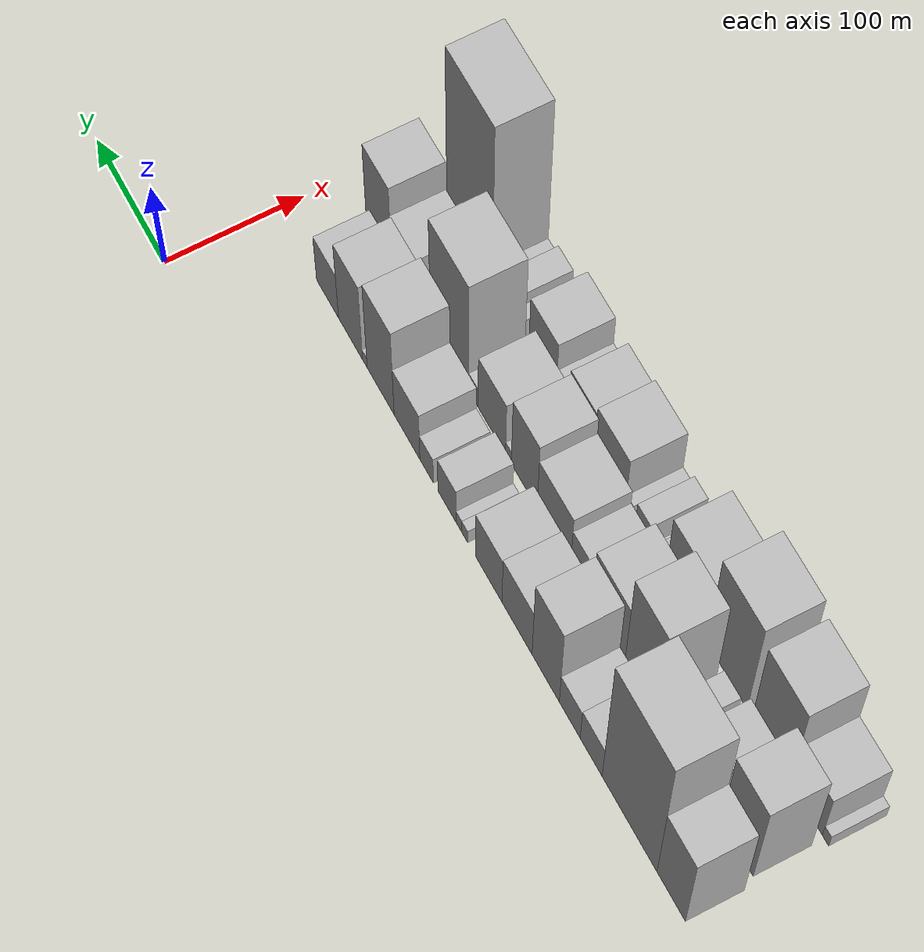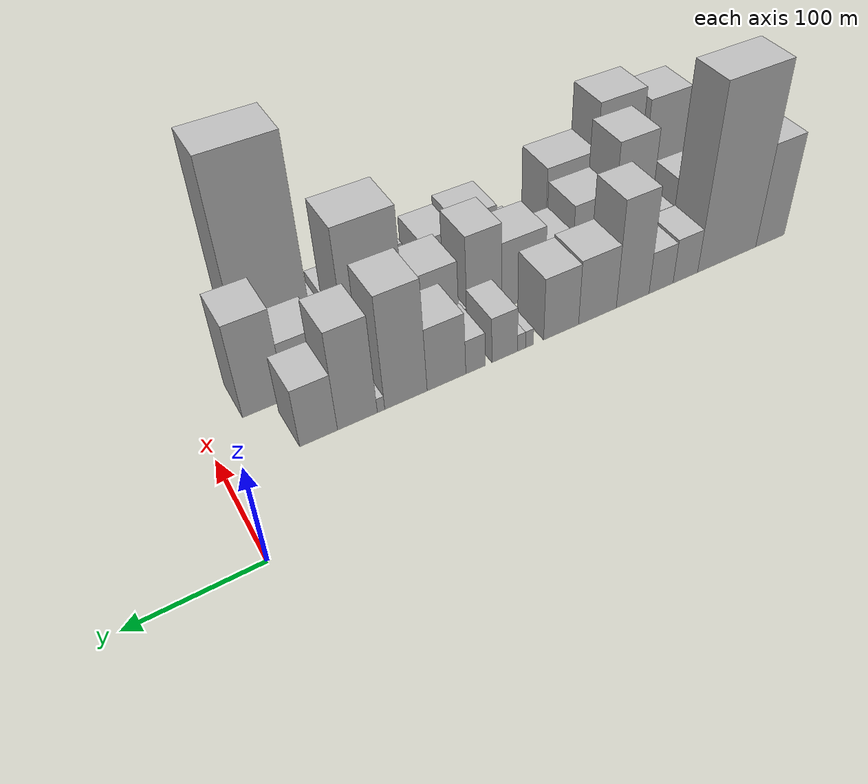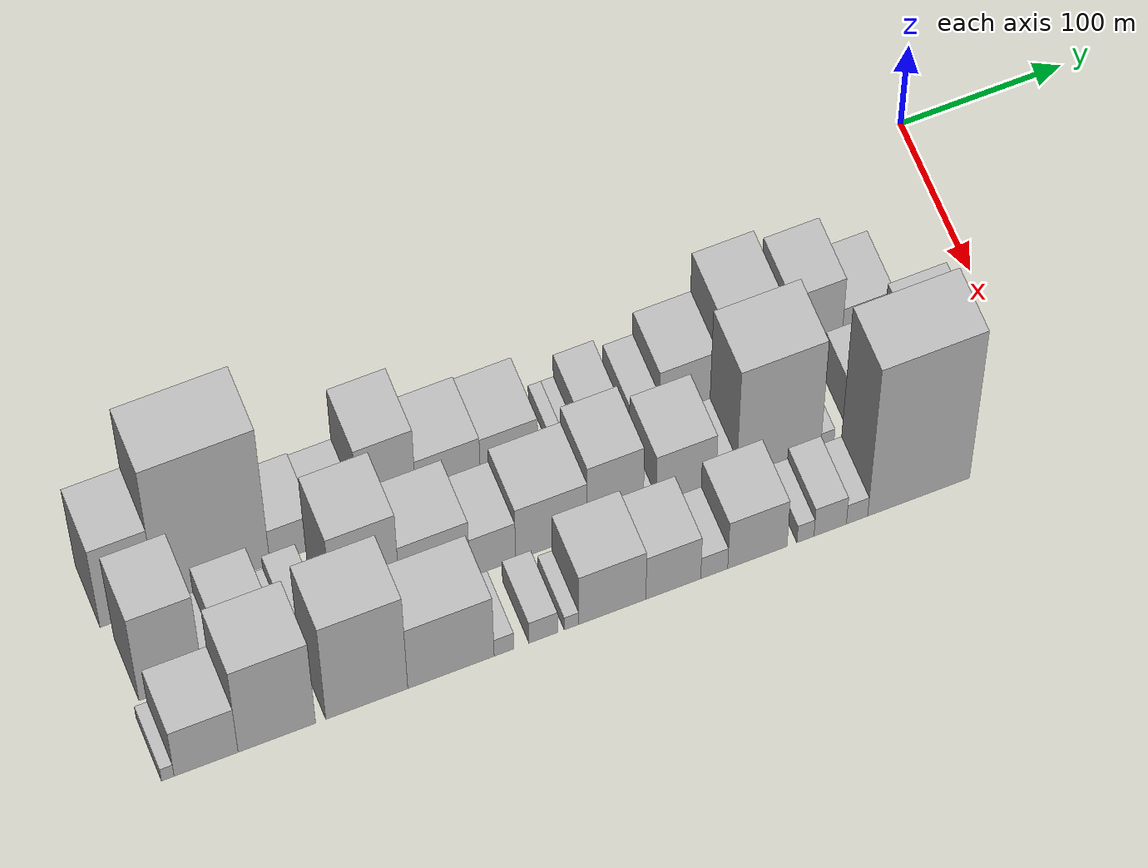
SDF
<sdf version="1.6">
 <world name="default">
  <model name="building_1">
   <static>1</static>
   <pose>100.0000 -518.8748 0 0.000000 0.000000 0.000000</pose>
   <link name="link">
    <pose>0 0 55.50 0 0 0</pose>
    <collision name="collision"><geometry><box><size>40.0000 34.2505 111.0000</size></box></geometry></collision>
    <visual name="visual">
     <cast_shadows>0</cast_shadows>
     <geometry><box><size>40.0000 34.2505 111.0000</size></box></geometry>
     <material>
      <script>
       <uri>model://HANNAS_wall/materials/scripts</uri>
       <uri>model://HANNAS_wall/materials/textures</uri>
       <name>vrc/HANNAS_wall</name>
      </script>
     </material>
    </visual>
   </link>
  </model>
  <model name="building_2">
   <static>1</static>
   <pose>100.0000 -468.1727 0 0.000000 0.000000 0.000000</pose>
   <link name="link">
    <pose>0 0 96.00 0 0 0</pose>
    <collision name="collision"><geometry><box><size>40.0000 67.1537 192.0000</size></box></geometry></collision>
    <visual name="visual">
     <cast_shadows>0</cast_shadows>
     <geometry><box><size>40.0000 67.1537 192.0000</size></box></geometry>
     <material>
      <script>
       <uri>model://HANNAS_wall/materials/scripts</uri>
       <uri>model://HANNAS_wall/materials/textures</uri>
       <name>vrc/HANNAS_wall</name>
      </script>
     </material>
    </visual>
   </link>
  </model>
  <model name="building_3">
   <static>1</static>
   <pose>100.0000 -420.9306 0 0.000000 0.000000 0.000000</pose>
   <link name="link">
    <pose>0 0 24.00 0 0 0</pose>
    <collision name="collision"><geometry><box><size>40.0000 27.3303 48.0000</size></box></geometry></collision>
    <visual name="visual">
     <cast_shadows>0</cast_shadows>
     <geometry><box><size>40.0000 27.3303 48.0000</size></box></geometry>
     <material>
      <script>
       <uri>model://HANNAS_wall/materials/scripts</uri>
       <uri>model://HANNAS_wall/materials/textures</uri>
       <name>vrc/HANNAS_wall</name>
      </script>
     </material>
    </visual>
   </link>
  </model>
  <model name="building_4">
   <static>1</static>
   <pose>100.0000 -394.1880 0 0.000000 0.000000 0.000000</pose>
   <link name="link">
    <pose>0 0 22.50 0 0 0</pose>
    <collision name="collision"><geometry><box><size>40.0000 26.1550 45.0000</size></box></geometry></collision>
    <visual name="visual">
     <cast_shadows>0</cast_shadows>
     <geometry><box><size>40.0000 26.1550 45.0000</size></box></geometry>
     <material>
      <script>
       <uri>model://HANNAS_wall/materials/scripts</uri>
       <uri>model://HANNAS_wall/materials/textures</uri>
       <name>vrc/HANNAS_wall</name>
      </script>
     </material>
    </visual>
   </link>
  </model>
  <model name="building_5">
   <static>1</static>
   <pose>100.0000 -363.7829 0 0.000000 0.000000 0.000000</pose>
   <link name="link">
    <pose>0 0 57.00 0 0 0</pose>
    <collision name="collision"><geometry><box><size>40.0000 34.6551 114.0000</size></box></geometry></collision>
    <visual name="visual">
     <cast_shadows>0</cast_shadows>
     <geometry><box><size>40.0000 34.6551 114.0000</size></box></geometry>
     <material>
      <script>
       <uri>model://HANNAS_wall/materials/scripts</uri>
       <uri>model://HANNAS_wall/materials/textures</uri>
       <name>vrc/HANNAS_wall</name>
      </script>
     </material>
    </visual>
   </link>
  </model>
  <model name="building_6">
   <static>1</static>
   <pose>100.0000 -327.1159 0 0.000000 0.000000 0.000000</pose>
   <link name="link">
    <pose>0 0 34.50 0 0 0</pose>
    <collision name="collision"><geometry><box><size>40.0000 38.6789 69.0000</size></box></geometry></collision>
    <visual name="visual">
     <cast_shadows>0</cast_shadows>
     <geometry><box><size>40.0000 38.6789 69.0000</size></box></geometry>
     <material>
      <script>
       <uri>model://HANNAS_wall/materials/scripts</uri>
       <uri>model://HANNAS_wall/materials/textures</uri>
       <name>vrc/HANNAS_wall</name>
      </script>
     </material>
    </visual>
   </link>
  </model>
  <model name="building_7">
   <static>1</static>
   <pose>100.0000 -290.4375 0 0.000000 0.000000 0.000000</pose>
   <link name="link">
    <pose>0 0 33.00 0 0 0</pose>
    <collision name="collision"><geometry><box><size>40.0000 34.6778 66.0000</size></box></geometry></collision>
    <visual name="visual">
     <cast_shadows>0</cast_shadows>
     <geometry><box><size>40.0000 34.6778 66.0000</size></box></geometry>
     <material>
      <script>
       <uri>model://HANNAS_wall/materials/scripts</uri>
       <uri>model://HANNAS_wall/materials/textures</uri>
       <name>vrc/HANNAS_wall</name>
      </script>
     </material>
    </visual>
   </link>
  </model>
  <model name="building_8">
   <static>1</static>
   <pose>100.0000 -259.2827 0 0.000000 0.000000 0.000000</pose>
   <link name="link">
    <pose>0 0 9.00 0 0 0</pose>
    <collision name="collision"><geometry><box><size>40.0000 7.6319 18.0000</size></box></geometry></collision>
    <visual name="visual">
     <cast_shadows>0</cast_shadows>
     <geometry><box><size>40.0000 7.6319 18.0000</size></box></geometry>
     <material>
      <script>
       <uri>model://HANNAS_wall/materials/scripts</uri>
       <uri>model://HANNAS_wall/materials/textures</uri>
       <name>vrc/HANNAS_wall</name>
      </script>
     </material>
    </visual>
   </link>
  </model>
  <model name="building_9">
   <static>1</static>
   <pose>100.0000 -251.6473 0 0.000000 0.000000 0.000000</pose>
   <link name="link">
    <pose>0 0 9.00 0 0 0</pose>
    <collision name="collision"><geometry><box><size>40.0000 7.6390 18.0000</size></box></geometry></collision>
    <visual name="visual">
     <cast_shadows>0</cast_shadows>
     <geometry><box><size>40.0000 7.6390 18.0000</size></box></geometry>
     <material>
      <script>
       <uri>model://HANNAS_wall/materials/scripts</uri>
       <uri>model://HANNAS_wall/materials/textures</uri>
       <name>vrc/HANNAS_wall</name>
      </script>
     </material>
    </visual>
   </link>
  </model>
  <model name="building_10">
   <static>1</static>
   <pose>100.0000 -235.7651 0 0.000000 0.000000 0.000000</pose>
   <link name="link">
    <pose>0 0 24.00 0 0 0</pose>
    <collision name="collision"><geometry><box><size>40.0000 24.1254 48.0000</size></box></geometry></collision>
    <visual name="visual">
     <cast_shadows>0</cast_shadows>
     <geometry><box><size>40.0000 24.1254 48.0000</size></box></geometry>
     <material>
      <script>
       <uri>model://HANNAS_wall/materials/scripts</uri>
       <uri>model://HANNAS_wall/materials/textures</uri>
       <name>vrc/HANNAS_wall</name>
      </script>
     </material>
    </visual>
   </link>
  </model>
  <model name="building_11">
   <static>1</static>
   <pose>100.0000 -208.6432 0 0.000000 0.000000 0.000000</pose>
   <link name="link">
    <pose>0 0 18.00 0 0 0</pose>
    <collision name="collision"><geometry><box><size>40.0000 18.1185 36.0000</size></box></geometry></collision>
    <visual name="visual">
     <cast_shadows>0</cast_shadows>
     <geometry><box><size>40.0000 18.1185 36.0000</size></box></geometry>
     <material>
      <script>
       <uri>model://HANNAS_wall/materials/scripts</uri>
       <uri>model://HANNAS_wall/materials/textures</uri>
       <name>vrc/HANNAS_wall</name>
      </script>
     </material>
    </visual>
   </link>
  </model>
  <model name="building_12">
   <static>1</static>
   <pose>100.0000 -182.1836 0 0.000000 0.000000 0.000000</pose>
   <link name="link">
    <pose>0 0 33.00 0 0 0</pose>
    <collision name="collision"><geometry><box><size>40.0000 34.8006 66.0000</size></box></geometry></collision>
    <visual name="visual">
     <cast_shadows>0</cast_shadows>
     <geometry><box><size>40.0000 34.8006 66.0000</size></box></geometry>
     <material>
      <script>
       <uri>model://HANNAS_wall/materials/scripts</uri>
       <uri>model://HANNAS_wall/materials/textures</uri>
       <name>vrc/HANNAS_wall</name>
      </script>
     </material>
    </visual>
   </link>
  </model>
  <model name="building_13">
   <static>1</static>
   <pose>100.0000 -146.3476 0 0.000000 0.000000 0.000000</pose>
   <link name="link">
    <pose>0 0 58.50 0 0 0</pose>
    <collision name="collision"><geometry><box><size>40.0000 36.8714 117.0000</size></box></geometry></collision>
    <visual name="visual">
     <cast_shadows>0</cast_shadows>
     <geometry><box><size>40.0000 36.8714 117.0000</size></box></geometry>
     <material>
      <script>
       <uri>model://HANNAS_wall/materials/scripts</uri>
       <uri>model://HANNAS_wall/materials/textures</uri>
       <name>vrc/HANNAS_wall</name>
      </script>
     </material>
    </visual>
   </link>
  </model>
  <model name="building_14">
   <static>1</static>
   <pose>100.0000 -124.7498 0 0.000000 0.000000 0.000000</pose>
   <link name="link">
    <pose>0 0 7.50 0 0 0</pose>
    <collision name="collision"><geometry><box><size>40.0000 6.3241 15.0000</size></box></geometry></collision>
    <visual name="visual">
     <cast_shadows>0</cast_shadows>
     <geometry><box><size>40.0000 6.3241 15.0000</size></box></geometry>
     <material>
      <script>
       <uri>model://HANNAS_wall/materials/scripts</uri>
       <uri>model://HANNAS_wall/materials/textures</uri>
       <name>vrc/HANNAS_wall</name>
      </script>
     </material>
    </visual>
   </link>
  </model>
  <model name="building_15">
   <static>1</static>
   <pose>100.0000 -104.9406 0 0.000000 0.000000 0.000000</pose>
   <link name="link">
    <pose>0 0 51.00 0 0 0</pose>
    <collision name="collision"><geometry><box><size>40.0000 33.2942 102.0000</size></box></geometry></collision>
    <visual name="visual">
     <cast_shadows>0</cast_shadows>
     <geometry><box><size>40.0000 33.2942 102.0000</size></box></geometry>
     <material>
      <script>
       <uri>model://HANNAS_wall/materials/scripts</uri>
       <uri>model://HANNAS_wall/materials/textures</uri>
       <name>vrc/HANNAS_wall</name>
      </script>
     </material>
    </visual>
   </link>
  </model>
  <model name="building_16">
   <static>1</static>
   <pose>100.0000 -72.9207 0 0.000000 0.000000 0.000000</pose>
   <link name="link">
    <pose>0 0 30.00 0 0 0</pose>
    <collision name="collision"><geometry><box><size>40.0000 30.7456 60.0000</size></box></geometry></collision>
    <visual name="visual">
     <cast_shadows>0</cast_shadows>
     <geometry><box><size>40.0000 30.7456 60.0000</size></box></geometry>
     <material>
      <script>
       <uri>model://HANNAS_wall/materials/scripts</uri>
       <uri>model://HANNAS_wall/materials/textures</uri>
       <name>vrc/HANNAS_wall</name>
      </script>
     </material>
    </visual>
   </link>
  </model>
  <model name="building_34">
   <static>1</static>
   <pose>149.0000 -512.0264 0 0.000000 0.000000 0.000000</pose>
   <link name="link">
    <pose>0 0 60.00 0 0 0</pose>
    <collision name="collision"><geometry><box><size>40.0000 37.9473 120.0000</size></box></geometry></collision>
    <visual name="visual">
     <cast_shadows>0</cast_shadows>
     <geometry><box><size>40.0000 37.9473 120.0000</size></box></geometry>
     <material>
      <script>
       <uri>model://HANNAS_wall/materials/scripts</uri>
       <uri>model://HANNAS_wall/materials/textures</uri>
       <name>vrc/HANNAS_wall</name>
      </script>
     </material>
    </visual>
   </link>
  </model>
  <model name="building_35">
   <static>1</static>
   <pose>149.0000 -487.8754 0 0.000000 0.000000 0.000000</pose>
   <link name="link">
    <pose>0 0 12.00 0 0 0</pose>
    <collision name="collision"><geometry><box><size>40.0000 10.3546 24.0000</size></box></geometry></collision>
    <visual name="visual">
     <cast_shadows>0</cast_shadows>
     <geometry><box><size>40.0000 10.3546 24.0000</size></box></geometry>
     <material>
      <script>
       <uri>model://HANNAS_wall/materials/scripts</uri>
       <uri>model://HANNAS_wall/materials/textures</uri>
       <name>vrc/HANNAS_wall</name>
      </script>
     </material>
    </visual>
   </link>
  </model>
  <model name="building_36">
   <static>1</static>
   <pose>149.0000 -466.2713 0 0.000000 0.000000 0.000000</pose>
   <link name="link">
    <pose>0 0 30.00 0 0 0</pose>
    <collision name="collision"><geometry><box><size>40.0000 32.8538 60.0000</size></box></geometry></collision>
    <visual name="visual">
     <cast_shadows>0</cast_shadows>
     <geometry><box><size>40.0000 32.8538 60.0000</size></box></geometry>
     <material>
      <script>
       <uri>model://HANNAS_wall/materials/scripts</uri>
       <uri>model://HANNAS_wall/materials/textures</uri>
       <name>vrc/HANNAS_wall</name>
      </script>
     </material>
    </visual>
   </link>
  </model>
  <model name="building_37">
   <static>1</static>
   <pose>149.0000 -445.6407 0 0.000000 0.000000 0.000000</pose>
   <link name="link">
    <pose>0 0 10.50 0 0 0</pose>
    <collision name="collision"><geometry><box><size>40.0000 8.4073 21.0000</size></box></geometry></collision>
    <visual name="visual">
     <cast_shadows>0</cast_shadows>
     <geometry><box><size>40.0000 8.4073 21.0000</size></box></geometry>
     <material>
      <script>
       <uri>model://HANNAS_wall/materials/scripts</uri>
       <uri>model://HANNAS_wall/materials/textures</uri>
       <name>vrc/HANNAS_wall</name>
      </script>
     </material>
    </visual>
   </link>
  </model>
  <model name="building_38">
   <static>1</static>
   <pose>149.0000 -431.5151 0 0.000000 0.000000 0.000000</pose>
   <link name="link">
    <pose>0 0 19.50 0 0 0</pose>
    <collision name="collision"><geometry><box><size>40.0000 19.8440 39.0000</size></box></geometry></collision>
    <visual name="visual">
     <cast_shadows>0</cast_shadows>
     <geometry><box><size>40.0000 19.8440 39.0000</size></box></geometry>
     <material>
      <script>
       <uri>model://HANNAS_wall/materials/scripts</uri>
       <uri>model://HANNAS_wall/materials/textures</uri>
       <name>vrc/HANNAS_wall</name>
      </script>
     </material>
    </visual>
   </link>
  </model>
  <model name="building_39">
   <static>1</static>
   <pose>149.0000 -395.4635 0 0.000000 0.000000 0.000000</pose>
   <link name="link">
    <pose>0 0 64.50 0 0 0</pose>
    <collision name="collision"><geometry><box><size>40.0000 40.2590 129.0000</size></box></geometry></collision>
    <visual name="visual">
     <cast_shadows>0</cast_shadows>
     <geometry><box><size>40.0000 40.2590 129.0000</size></box></geometry>
     <material>
      <script>
       <uri>model://HANNAS_wall/materials/scripts</uri>
       <uri>model://HANNAS_wall/materials/textures</uri>
       <name>vrc/HANNAS_wall</name>
      </script>
     </material>
    </visual>
   </link>
  </model>
  <model name="building_40">
   <static>1</static>
   <pose>149.0000 -354.4820 0 0.000000 0.000000 0.000000</pose>
   <link name="link">
    <pose>0 0 40.50 0 0 0</pose>
    <collision name="collision"><geometry><box><size>40.0000 41.7041 81.0000</size></box></geometry></collision>
    <visual name="visual">
     <cast_shadows>0</cast_shadows>
     <geometry><box><size>40.0000 41.7041 81.0000</size></box></geometry>
     <material>
      <script>
       <uri>model://HANNAS_wall/materials/scripts</uri>
       <uri>model://HANNAS_wall/materials/textures</uri>
       <name>vrc/HANNAS_wall</name>
      </script>
     </material>
    </visual>
   </link>
  </model>
  <model name="building_41">
   <static>1</static>
   <pose>149.0000 -319.8575 0 0.000000 0.000000 0.000000</pose>
   <link name="link">
    <pose>0 0 27.00 0 0 0</pose>
    <collision name="collision"><geometry><box><size>40.0000 27.5447 54.0000</size></box></geometry></collision>
    <visual name="visual">
     <cast_shadows>0</cast_shadows>
     <geometry><box><size>40.0000 27.5447 54.0000</size></box></geometry>
     <material>
      <script>
       <uri>model://HANNAS_wall/materials/scripts</uri>
       <uri>model://HANNAS_wall/materials/textures</uri>
       <name>vrc/HANNAS_wall</name>
      </script>
     </material>
    </visual>
   </link>
  </model>
  <model name="building_42">
   <static>1</static>
   <pose>149.0000 -284.5072 0 0.000000 0.000000 0.000000</pose>
   <link name="link">
    <pose>0 0 36.00 0 0 0</pose>
    <collision name="collision"><geometry><box><size>40.0000 43.1559 72.0000</size></box></geometry></collision>
    <visual name="visual">
     <cast_shadows>0</cast_shadows>
     <geometry><box><size>40.0000 43.1559 72.0000</size></box></geometry>
     <material>
      <script>
       <uri>model://HANNAS_wall/materials/scripts</uri>
       <uri>model://HANNAS_wall/materials/textures</uri>
       <name>vrc/HANNAS_wall</name>
      </script>
     </material>
    </visual>
   </link>
  </model>
  <model name="building_43">
   <static>1</static>
   <pose>149.0000 -246.0006 0 0.000000 0.000000 0.000000</pose>
   <link name="link">
    <pose>0 0 46.50 0 0 0</pose>
    <collision name="collision"><geometry><box><size>40.0000 33.8573 93.0000</size></box></geometry></collision>
    <visual name="visual">
     <cast_shadows>0</cast_shadows>
     <geometry><box><size>40.0000 33.8573 93.0000</size></box></geometry>
     <material>
      <script>
       <uri>model://HANNAS_wall/materials/scripts</uri>
       <uri>model://HANNAS_wall/materials/textures</uri>
       <name>vrc/HANNAS_wall</name>
      </script>
     </material>
    </visual>
   </link>
  </model>
  <model name="building_44">
   <static>1</static>
   <pose>149.0000 -225.2430 0 0.000000 0.000000 0.000000</pose>
   <link name="link">
    <pose>0 0 9.00 0 0 0</pose>
    <collision name="collision"><geometry><box><size>40.0000 7.6579 18.0000</size></box></geometry></collision>
    <visual name="visual">
     <cast_shadows>0</cast_shadows>
     <geometry><box><size>40.0000 7.6579 18.0000</size></box></geometry>
     <material>
      <script>
       <uri>model://HANNAS_wall/materials/scripts</uri>
       <uri>model://HANNAS_wall/materials/textures</uri>
       <name>vrc/HANNAS_wall</name>
      </script>
     </material>
    </visual>
   </link>
  </model>
  <model name="building_45">
   <static>1</static>
   <pose>149.0000 -203.2521 0 0.000000 0.000000 0.000000</pose>
   <link name="link">
    <pose>0 0 36.00 0 0 0</pose>
    <collision name="collision"><geometry><box><size>40.0000 36.3238 72.0000</size></box></geometry></collision>
    <visual name="visual">
     <cast_shadows>0</cast_shadows>
     <geometry><box><size>40.0000 36.3238 72.0000</size></box></geometry>
     <material>
      <script>
       <uri>model://HANNAS_wall/materials/scripts</uri>
       <uri>model://HANNAS_wall/materials/textures</uri>
       <name>vrc/HANNAS_wall</name>
      </script>
     </material>
    </visual>
   </link>
  </model>
  <model name="building_46">
   <static>1</static>
   <pose>149.0000 -178.8238 0 0.000000 0.000000 0.000000</pose>
   <link name="link">
    <pose>0 0 13.50 0 0 0</pose>
    <collision name="collision"><geometry><box><size>40.0000 12.5328 27.0000</size></box></geometry></collision>
    <visual name="visual">
     <cast_shadows>0</cast_shadows>
     <geometry><box><size>40.0000 12.5328 27.0000</size></box></geometry>
     <material>
      <script>
       <uri>model://HANNAS_wall/materials/scripts</uri>
       <uri>model://HANNAS_wall/materials/textures</uri>
       <name>vrc/HANNAS_wall</name>
      </script>
     </material>
    </visual>
   </link>
  </model>
  <model name="building_47">
   <static>1</static>
   <pose>149.0000 -146.7904 0 0.000000 0.000000 0.000000</pose>
   <link name="link">
    <pose>0 0 73.50 0 0 0</pose>
    <collision name="collision"><geometry><box><size>40.0000 51.5340 147.0000</size></box></geometry></collision>
    <visual name="visual">
     <cast_shadows>0</cast_shadows>
     <geometry><box><size>40.0000 51.5340 147.0000</size></box></geometry>
     <material>
      <script>
       <uri>model://HANNAS_wall/materials/scripts</uri>
       <uri>model://HANNAS_wall/materials/textures</uri>
       <name>vrc/HANNAS_wall</name>
      </script>
     </material>
    </visual>
   </link>
  </model>
  <model name="building_48">
   <static>1</static>
   <pose>149.0000 -116.9717 0 0.000000 0.000000 0.000000</pose>
   <link name="link">
    <pose>0 0 9.00 0 0 0</pose>
    <collision name="collision"><geometry><box><size>40.0000 8.1034 18.0000</size></box></geometry></collision>
    <visual name="visual">
     <cast_shadows>0</cast_shadows>
     <geometry><box><size>40.0000 8.1034 18.0000</size></box></geometry>
     <material>
      <script>
       <uri>model://HANNAS_wall/materials/scripts</uri>
       <uri>model://HANNAS_wall/materials/textures</uri>
       <name>vrc/HANNAS_wall</name>
      </script>
     </material>
    </visual>
   </link>
  </model>
  <model name="building_49">
   <static>1</static>
   <pose>149.0000 -85.0150 0 0.000000 0.000000 0.000000</pose>
   <link name="link">
    <pose>0 0 30.00 0 0 0</pose>
    <collision name="collision"><geometry><box><size>40.0000 35.8101 60.0000</size></box></geometry></collision>
    <visual name="visual">
     <cast_shadows>0</cast_shadows>
     <geometry><box><size>40.0000 35.8101 60.0000</size></box></geometry>
     <material>
      <script>
       <uri>model://HANNAS_wall/materials/scripts</uri>
       <uri>model://HANNAS_wall/materials/textures</uri>
       <name>vrc/HANNAS_wall</name>
      </script>
     </material>
    </visual>
   </link>
  </model>
  <model name="building_50">
   <static>1</static>
   <pose>149.0000 -49.4496 0 0.000000 0.000000 0.000000</pose>
   <link name="link">
    <pose>0 0 48.00 0 0 0</pose>
    <collision name="collision"><geometry><box><size>40.0000 35.3208 96.0000</size></box></geometry></collision>
    <visual name="visual">
     <cast_shadows>0</cast_shadows>
     <geometry><box><size>40.0000 35.3208 96.0000</size></box></geometry>
     <material>
      <script>
       <uri>model://HANNAS_wall/materials/scripts</uri>
       <uri>model://HANNAS_wall/materials/textures</uri>
       <name>vrc/HANNAS_wall</name>
      </script>
     </material>
    </visual>
   </link>
  </model>
  <model name="building_65">
   <static>1</static>
   <pose>198.0000 -532.2519 0 0.000000 0.000000 0.000000</pose>
   <link name="link">
    <pose>0 0 9.00 0 0 0</pose>
    <collision name="collision"><geometry><box><size>40.0000 7.4963 18.0000</size></box></geometry></collision>
    <visual name="visual">
     <cast_shadows>0</cast_shadows>
     <geometry><box><size>40.0000 7.4963 18.0000</size></box></geometry>
     <material>
      <script>
       <uri>model://HANNAS_wall/materials/scripts</uri>
       <uri>model://HANNAS_wall/materials/textures</uri>
       <name>vrc/HANNAS_wall</name>
      </script>
     </material>
    </visual>
   </link>
  </model>
  <model name="building_66">
   <static>1</static>
   <pose>198.0000 -509.6199 0 0.000000 0.000000 0.000000</pose>
   <link name="link">
    <pose>0 0 33.00 0 0 0</pose>
    <collision name="collision"><geometry><box><size>40.0000 37.7678 66.0000</size></box></geometry></collision>
    <visual name="visual">
     <cast_shadows>0</cast_shadows>
     <geometry><box><size>40.0000 37.7678 66.0000</size></box></geometry>
     <material>
      <script>
       <uri>model://HANNAS_wall/materials/scripts</uri>
       <uri>model://HANNAS_wall/materials/textures</uri>
       <name>vrc/HANNAS_wall</name>
      </script>
     </material>
    </visual>
   </link>
  </model>
  <model name="building_67">
   <static>1</static>
   <pose>198.0000 -467.7939 0 0.000000 0.000000 0.000000</pose>
   <link name="link">
    <pose>0 0 60.00 0 0 0</pose>
    <collision name="collision"><geometry><box><size>40.0000 45.8842 120.0000</size></box></geometry></collision>
    <visual name="visual">
     <cast_shadows>0</cast_shadows>
     <geometry><box><size>40.0000 45.8842 120.0000</size></box></geometry>
     <material>
      <script>
       <uri>model://HANNAS_wall/materials/scripts</uri>
       <uri>model://HANNAS_wall/materials/textures</uri>
       <name>vrc/HANNAS_wall</name>
      </script>
     </material>
    </visual>
   </link>
  </model>
  <model name="building_68">
   <static>1</static>
   <pose>198.0000 -414.4557 0 0.000000 0.000000 0.000000</pose>
   <link name="link">
    <pose>0 0 67.50 0 0 0</pose>
    <collision name="collision"><geometry><box><size>40.0000 48.7921 135.0000</size></box></geometry></collision>
    <visual name="visual">
     <cast_shadows>0</cast_shadows>
     <geometry><box><size>40.0000 48.7921 135.0000</size></box></geometry>
     <material>
      <script>
       <uri>model://HANNAS_wall/materials/scripts</uri>
       <uri>model://HANNAS_wall/materials/textures</uri>
       <name>vrc/HANNAS_wall</name>
      </script>
     </material>
    </visual>
   </link>
  </model>
  <model name="building_69">
   <static>1</static>
   <pose>198.0000 -364.2869 0 0.000000 0.000000 0.000000</pose>
   <link name="link">
    <pose>0 0 43.50 0 0 0</pose>
    <collision name="collision"><geometry><box><size>40.0000 51.5457 87.0000</size></box></geometry></collision>
    <visual name="visual">
     <cast_shadows>0</cast_shadows>
     <geometry><box><size>40.0000 51.5457 87.0000</size></box></geometry>
     <material>
      <script>
       <uri>model://HANNAS_wall/materials/scripts</uri>
       <uri>model://HANNAS_wall/materials/textures</uri>
       <name>vrc/HANNAS_wall</name>
      </script>
     </material>
    </visual>
   </link>
  </model>
  <model name="building_70">
   <static>1</static>
   <pose>198.0000 -332.5673 0 0.000000 0.000000 0.000000</pose>
   <link name="link">
    <pose>0 0 12.00 0 0 0</pose>
    <collision name="collision"><geometry><box><size>40.0000 11.8934 24.0000</size></box></geometry></collision>
    <visual name="visual">
     <cast_shadows>0</cast_shadows>
     <geometry><box><size>40.0000 11.8934 24.0000</size></box></geometry>
     <material>
      <script>
       <uri>model://HANNAS_wall/materials/scripts</uri>
       <uri>model://HANNAS_wall/materials/textures</uri>
       <name>vrc/HANNAS_wall</name>
      </script>
     </material>
    </visual>
   </link>
  </model>
  <model name="building_71">
   <static>1</static>
   <pose>198.0000 -309.0231 0 0.000000 0.000000 0.000000</pose>
   <link name="link">
    <pose>0 0 15.00 0 0 0</pose>
    <collision name="collision"><geometry><box><size>40.0000 17.1951 30.0000</size></box></geometry></collision>
    <visual name="visual">
     <cast_shadows>0</cast_shadows>
     <geometry><box><size>40.0000 17.1951 30.0000</size></box></geometry>
     <material>
      <script>
       <uri>model://HANNAS_wall/materials/scripts</uri>
       <uri>model://HANNAS_wall/materials/textures</uri>
       <name>vrc/HANNAS_wall</name>
      </script>
     </material>
    </visual>
   </link>
  </model>
  <model name="building_72">
   <static>1</static>
   <pose>198.0000 -292.0791 0 0.000000 0.000000 0.000000</pose>
   <link name="link">
    <pose>0 0 9.00 0 0 0</pose>
    <collision name="collision"><geometry><box><size>40.0000 8.6929 18.0000</size></box></geometry></collision>
    <visual name="visual">
     <cast_shadows>0</cast_shadows>
     <geometry><box><size>40.0000 8.6929 18.0000</size></box></geometry>
     <material>
      <script>
       <uri>model://HANNAS_wall/materials/scripts</uri>
       <uri>model://HANNAS_wall/materials/textures</uri>
       <name>vrc/HANNAS_wall</name>
      </script>
     </material>
    </visual>
   </link>
  </model>
  <model name="building_73">
   <static>1</static>
   <pose>198.0000 -267.5535 0 0.000000 0.000000 0.000000</pose>
   <link name="link">
    <pose>0 0 34.50 0 0 0</pose>
    <collision name="collision"><geometry><box><size>40.0000 40.3584 69.0000</size></box></geometry></collision>
    <visual name="visual">
     <cast_shadows>0</cast_shadows>
     <geometry><box><size>40.0000 40.3584 69.0000</size></box></geometry>
     <material>
      <script>
       <uri>model://HANNAS_wall/materials/scripts</uri>
       <uri>model://HANNAS_wall/materials/textures</uri>
       <name>vrc/HANNAS_wall</name>
      </script>
     </material>
    </visual>
   </link>
  </model>
  <model name="building_74">
   <static>1</static>
   <pose>198.0000 -230.8318 0 0.000000 0.000000 0.000000</pose>
   <link name="link">
    <pose>0 0 30.00 0 0 0</pose>
    <collision name="collision"><geometry><box><size>40.0000 33.0849 60.0000</size></box></geometry></collision>
    <visual name="visual">
     <cast_shadows>0</cast_shadows>
     <geometry><box><size>40.0000 33.0849 60.0000</size></box></geometry>
     <material>
      <script>
       <uri>model://HANNAS_wall/materials/scripts</uri>
       <uri>model://HANNAS_wall/materials/textures</uri>
       <name>vrc/HANNAS_wall</name>
      </script>
     </material>
    </visual>
   </link>
  </model>
  <model name="building_75">
   <static>1</static>
   <pose>198.0000 -206.1458 0 0.000000 0.000000 0.000000</pose>
   <link name="link">
    <pose>0 0 15.00 0 0 0</pose>
    <collision name="collision"><geometry><box><size>40.0000 16.2871 30.0000</size></box></geometry></collision>
    <visual name="visual">
     <cast_shadows>0</cast_shadows>
     <geometry><box><size>40.0000 16.2871 30.0000</size></box></geometry>
     <material>
      <script>
       <uri>model://HANNAS_wall/materials/scripts</uri>
       <uri>model://HANNAS_wall/materials/textures</uri>
       <name>vrc/HANNAS_wall</name>
      </script>
     </material>
    </visual>
   </link>
  </model>
  <model name="building_76">
   <static>1</static>
   <pose>198.0000 -179.9948 0 0.000000 0.000000 0.000000</pose>
   <link name="link">
    <pose>0 0 33.00 0 0 0</pose>
    <collision name="collision"><geometry><box><size>40.0000 36.0149 66.0000</size></box></geometry></collision>
    <visual name="visual">
     <cast_shadows>0</cast_shadows>
     <geometry><box><size>40.0000 36.0149 66.0000</size></box></geometry>
     <material>
      <script>
       <uri>model://HANNAS_wall/materials/scripts</uri>
       <uri>model://HANNAS_wall/materials/textures</uri>
       <name>vrc/HANNAS_wall</name>
      </script>
     </material>
    </visual>
   </link>
  </model>
  <model name="building_77">
   <static>1</static>
   <pose>198.0000 -150.8385 0 0.000000 0.000000 0.000000</pose>
   <link name="link">
    <pose>0 0 12.00 0 0 0</pose>
    <collision name="collision"><geometry><box><size>40.0000 10.2975 24.0000</size></box></geometry></collision>
    <visual name="visual">
     <cast_shadows>0</cast_shadows>
     <geometry><box><size>40.0000 10.2975 24.0000</size></box></geometry>
     <material>
      <script>
       <uri>model://HANNAS_wall/materials/scripts</uri>
       <uri>model://HANNAS_wall/materials/textures</uri>
       <name>vrc/HANNAS_wall</name>
      </script>
     </material>
    </visual>
   </link>
  </model>
  <model name="building_78">
   <static>1</static>
   <pose>198.0000 -135.8267 0 0.000000 0.000000 0.000000</pose>
   <link name="link">
    <pose>0 0 19.50 0 0 0</pose>
    <collision name="collision"><geometry><box><size>40.0000 19.7261 39.0000</size></box></geometry></collision>
    <visual name="visual">
     <cast_shadows>0</cast_shadows>
     <geometry><box><size>40.0000 19.7261 39.0000</size></box></geometry>
     <material>
      <script>
       <uri>model://HANNAS_wall/materials/scripts</uri>
       <uri>model://HANNAS_wall/materials/textures</uri>
       <name>vrc/HANNAS_wall</name>
      </script>
     </material>
    </visual>
   </link>
  </model>
  <model name="building_79">
   <static>1</static>
   <pose>198.0000 -119.4909 0 0.000000 0.000000 0.000000</pose>
   <link name="link">
    <pose>0 0 13.50 0 0 0</pose>
    <collision name="collision"><geometry><box><size>40.0000 12.9456 27.0000</size></box></geometry></collision>
    <visual name="visual">
     <cast_shadows>0</cast_shadows>
     <geometry><box><size>40.0000 12.9456 27.0000</size></box></geometry>
     <material>
      <script>
       <uri>model://HANNAS_wall/materials/scripts</uri>
       <uri>model://HANNAS_wall/materials/textures</uri>
       <name>vrc/HANNAS_wall</name>
      </script>
     </material>
    </visual>
   </link>
  </model>
  <model name="building_80">
   <static>1</static>
   <pose>198.0000 -81.9104 0 0.000000 0.000000 0.000000</pose>
   <link name="link">
    <pose>0 0 102.00 0 0 0</pose>
    <collision name="collision"><geometry><box><size>40.0000 62.2154 204.0000</size></box></geometry></collision>
    <visual name="visual">
     <cast_shadows>0</cast_shadows>
     <geometry><box><size>40.0000 62.2154 204.0000</size></box></geometry>
     <material>
      <script>
       <uri>model://HANNAS_wall/materials/scripts</uri>
       <uri>model://HANNAS_wall/materials/textures</uri>
       <name>vrc/HANNAS_wall</name>
      </script>
     </material>
    </visual>
   </link>
  </model>
 </world>
</sdf>
